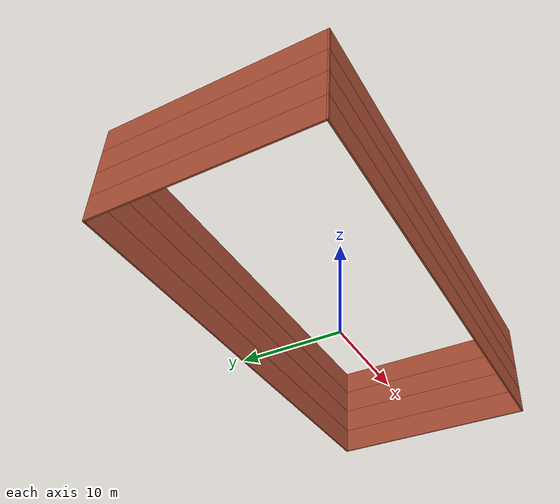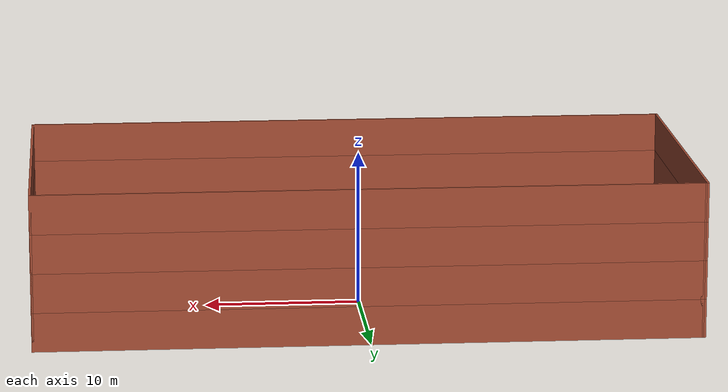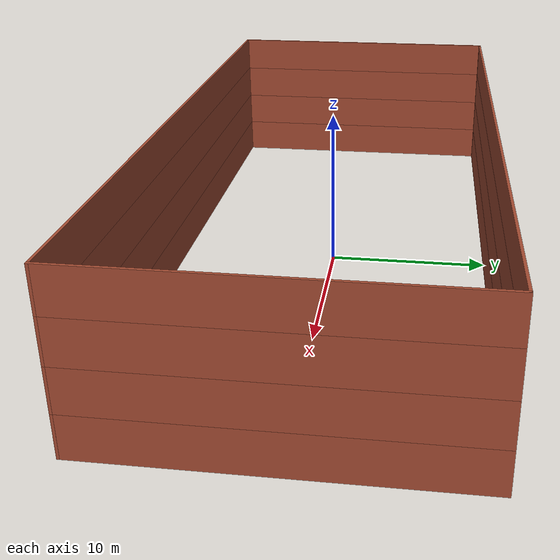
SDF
<?xml version='1.0'?>
<sdf version='1.6'>
  <model name='Warehouse_walls'>
    <link name='Wall_11'>
      <pose frame=''>0.125 10.05 0 0 -0 0</pose>
      <self_collide>0</self_collide>
      <kinematic>0</kinematic>
      <visual name='Wall_11_Visual'>
        <pose frame=''>0 0 1.25 0 -0 0</pose>
        <geometry>
          <box>
            <size>42 0.15 2.5</size>
          </box>
        </geometry>
        <material>
          <script>
            <uri>file://media/materials/scripts/gazebo.material</uri>
            <name>Gazebo/Bricks</name>
          </script>
          <ambient>1 1 1 1</ambient>
          <diffuse>1 1 1 1</diffuse>
          <specular>0.2 0.2 0.2 1</specular>
          <emissive>0 0 0 1</emissive>
        </material>
        <cast_shadows>1</cast_shadows>
        <transparency>0</transparency>
      </visual>
      <collision name='Wall_11_Collision'>
        <laser_retro>0</laser_retro>
        <max_contacts>10</max_contacts>
        <pose frame=''>0 0 1.25 0 -0 0</pose>
        <geometry>
          <box>
            <size>42 0.15 2.5</size>
          </box>
        </geometry>
        <surface>
          <friction>
            <ode>
              <mu>1</mu>
              <mu2>1</mu2>
              <fdir1>0 0 0</fdir1>
              <slip1>0</slip1>
              <slip2>0</slip2>
            </ode>
            <torsional>
              <coefficient>1</coefficient>
              <patch_radius>0</patch_radius>
              <surface_radius>0</surface_radius>
              <use_patch_radius>1</use_patch_radius>
              <ode>
                <slip>0</slip>
              </ode>
            </torsional>
          </friction>
          <bounce>
            <restitution_coefficient>0</restitution_coefficient>
            <threshold>1e+06</threshold>
          </bounce>
          <contact>
            <collide_without_contact>0</collide_without_contact>
            <collide_without_contact_bitmask>1</collide_without_contact_bitmask>
            <collide_bitmask>1</collide_bitmask>
            <ode>
              <soft_cfm>0</soft_cfm>
              <soft_erp>0.2</soft_erp>
              <kp>1e+13</kp>
              <kd>1</kd>
              <max_vel>0.01</max_vel>
              <min_depth>0</min_depth>
            </ode>
            <bullet>
              <split_impulse>1</split_impulse>
              <split_impulse_penetration_threshold>-0.01</split_impulse_penetration_threshold>
              <soft_cfm>0</soft_cfm>
              <soft_erp>0.2</soft_erp>
              <kp>1e+13</kp>
              <kd>1</kd>
            </bullet>
          </contact>
        </surface>
      </collision>
    </link>
    <link name='Wall_12'>
      <pose frame=''>21.05 0 0 0 0 -1.5708</pose>
      <self_collide>0</self_collide>
      <kinematic>0</kinematic>
      <visual name='Wall_12_Visual'>
        <pose frame=''>0 0 1.25 0 -0 0</pose>
        <geometry>
          <box>
            <size>20.25 0.15 2.5</size>
          </box>
        </geometry>
        <material>
          <script>
            <uri>file://media/materials/scripts/gazebo.material</uri>
            <name>Gazebo/Bricks</name>
          </script>
          <ambient>1 1 1 1</ambient>
          <diffuse>1 1 1 1</diffuse>
          <specular>0.2 0.2 0.2 1</specular>
          <emissive>0 0 0 1</emissive>
        </material>
        <cast_shadows>1</cast_shadows>
        <transparency>0</transparency>
      </visual>
      <collision name='Wall_12_Collision'>
        <laser_retro>0</laser_retro>
        <max_contacts>10</max_contacts>
        <pose frame=''>0 0 1.25 0 -0 0</pose>
        <geometry>
          <box>
            <size>20.25 0.15 2.5</size>
          </box>
        </geometry>
        <surface>
          <friction>
            <ode>
              <mu>1</mu>
              <mu2>1</mu2>
              <fdir1>0 0 0</fdir1>
              <slip1>0</slip1>
              <slip2>0</slip2>
            </ode>
            <torsional>
              <coefficient>1</coefficient>
              <patch_radius>0</patch_radius>
              <surface_radius>0</surface_radius>
              <use_patch_radius>1</use_patch_radius>
              <ode>
                <slip>0</slip>
              </ode>
            </torsional>
          </friction>
          <bounce>
            <restitution_coefficient>0</restitution_coefficient>
            <threshold>1e+06</threshold>
          </bounce>
          <contact>
            <collide_without_contact>0</collide_without_contact>
            <collide_without_contact_bitmask>1</collide_without_contact_bitmask>
            <collide_bitmask>1</collide_bitmask>
            <ode>
              <soft_cfm>0</soft_cfm>
              <soft_erp>0.2</soft_erp>
              <kp>1e+13</kp>
              <kd>1</kd>
              <max_vel>0.01</max_vel>
              <min_depth>0</min_depth>
            </ode>
            <bullet>
              <split_impulse>1</split_impulse>
              <split_impulse_penetration_threshold>-0.01</split_impulse_penetration_threshold>
              <soft_cfm>0</soft_cfm>
              <soft_erp>0.2</soft_erp>
              <kp>1e+13</kp>
              <kd>1</kd>
            </bullet>
          </contact>
        </surface>
      </collision>
    </link>
    <link name='Wall_13'>
      <pose frame=''>0 -10.05 0 0 -0 3.14159</pose>
      <self_collide>0</self_collide>
      <kinematic>0</kinematic>
      <visual name='Wall_13_Visual'>
        <pose frame=''>0 0 1.25 0 -0 0</pose>
        <geometry>
          <box>
            <size>42.25 0.15 2.5</size>
          </box>
        </geometry>
        <material>
          <script>
            <uri>file://media/materials/scripts/gazebo.material</uri>
            <name>Gazebo/Bricks</name>
          </script>
          <ambient>1 1 1 1</ambient>
          <diffuse>1 1 1 1</diffuse>
          <specular>0.2 0.2 0.2 1</specular>
          <emissive>0 0 0 1</emissive>
        </material>
        <cast_shadows>1</cast_shadows>
        <transparency>0</transparency>
      </visual>
      <collision name='Wall_13_Collision'>
        <laser_retro>0</laser_retro>
        <max_contacts>10</max_contacts>
        <pose frame=''>0 0 1.25 0 -0 0</pose>
        <geometry>
          <box>
            <size>42.25 0.15 2.5</size>
          </box>
        </geometry>
        <surface>
          <friction>
            <ode>
              <mu>1</mu>
              <mu2>1</mu2>
              <fdir1>0 0 0</fdir1>
              <slip1>0</slip1>
              <slip2>0</slip2>
            </ode>
            <torsional>
              <coefficient>1</coefficient>
              <patch_radius>0</patch_radius>
              <surface_radius>0</surface_radius>
              <use_patch_radius>1</use_patch_radius>
              <ode>
                <slip>0</slip>
              </ode>
            </torsional>
          </friction>
          <bounce>
            <restitution_coefficient>0</restitution_coefficient>
            <threshold>1e+06</threshold>
          </bounce>
          <contact>
            <collide_without_contact>0</collide_without_contact>
            <collide_without_contact_bitmask>1</collide_without_contact_bitmask>
            <collide_bitmask>1</collide_bitmask>
            <ode>
              <soft_cfm>0</soft_cfm>
              <soft_erp>0.2</soft_erp>
              <kp>1e+13</kp>
              <kd>1</kd>
              <max_vel>0.01</max_vel>
              <min_depth>0</min_depth>
            </ode>
            <bullet>
              <split_impulse>1</split_impulse>
              <split_impulse_penetration_threshold>-0.01</split_impulse_penetration_threshold>
              <soft_cfm>0</soft_cfm>
              <soft_erp>0.2</soft_erp>
              <kp>1e+13</kp>
              <kd>1</kd>
            </bullet>
          </contact>
        </surface>
      </collision>
    </link>
    <link name='Wall_14'>
      <pose frame=''>-21.05 0 0 0 -0 1.5708</pose>
      <self_collide>0</self_collide>
      <kinematic>0</kinematic>
      <visual name='Wall_14_Visual'>
        <pose frame=''>0 0 1.25 0 -0 0</pose>
        <geometry>
          <box>
            <size>20.25 0.15 2.5</size>
          </box>
        </geometry>
        <material>
          <script>
            <uri>file://media/materials/scripts/gazebo.material</uri>
            <name>Gazebo/Bricks</name>
          </script>
          <ambient>1 1 1 1</ambient>
          <diffuse>1 1 1 1</diffuse>
          <specular>0.2 0.2 0.2 1</specular>
          <emissive>0 0 0 1</emissive>
        </material>
        <cast_shadows>1</cast_shadows>
        <transparency>0</transparency>
      </visual>
      <collision name='Wall_14_Collision'>
        <laser_retro>0</laser_retro>
        <max_contacts>10</max_contacts>
        <pose frame=''>0 0 1.25 0 -0 0</pose>
        <geometry>
          <box>
            <size>20.25 0.15 2.5</size>
          </box>
        </geometry>
        <surface>
          <friction>
            <ode>
              <mu>1</mu>
              <mu2>1</mu2>
              <fdir1>0 0 0</fdir1>
              <slip1>0</slip1>
              <slip2>0</slip2>
            </ode>
            <torsional>
              <coefficient>1</coefficient>
              <patch_radius>0</patch_radius>
              <surface_radius>0</surface_radius>
              <use_patch_radius>1</use_patch_radius>
              <ode>
                <slip>0</slip>
              </ode>
            </torsional>
          </friction>
          <bounce>
            <restitution_coefficient>0</restitution_coefficient>
            <threshold>1e+06</threshold>
          </bounce>
          <contact>
            <collide_without_contact>0</collide_without_contact>
            <collide_without_contact_bitmask>1</collide_without_contact_bitmask>
            <collide_bitmask>1</collide_bitmask>
            <ode>
              <soft_cfm>0</soft_cfm>
              <soft_erp>0.2</soft_erp>
              <kp>1e+13</kp>
              <kd>1</kd>
              <max_vel>0.01</max_vel>
              <min_depth>0</min_depth>
            </ode>
            <bullet>
              <split_impulse>1</split_impulse>
              <split_impulse_penetration_threshold>-0.01</split_impulse_penetration_threshold>
              <soft_cfm>0</soft_cfm>
              <soft_erp>0.2</soft_erp>
              <kp>1e+13</kp>
              <kd>1</kd>
            </bullet>
          </contact>
        </surface>
      </collision>
    </link>
    <link name='Wall_16'>
      <pose frame=''>-20.925 10.05 0 0 0 -3.14159</pose>
      <self_collide>0</self_collide>
      <kinematic>0</kinematic>
      <visual name='Wall_16_Visual'>
        <pose frame=''>0 0 1.25 0 -0 0</pose>
        <geometry>
          <box>
            <size>0.4 0.15 2.5</size>
          </box>
        </geometry>
        <material>
          <script>
            <uri>file://media/materials/scripts/gazebo.material</uri>
            <name>Gazebo/Bricks</name>
          </script>
          <ambient>1 1 1 1</ambient>
          <diffuse>1 1 1 1</diffuse>
          <specular>0.2 0.2 0.2 1</specular>
          <emissive>0 0 0 1</emissive>
        </material>
        <cast_shadows>1</cast_shadows>
        <transparency>0</transparency>
      </visual>
      <collision name='Wall_16_Collision'>
        <laser_retro>0</laser_retro>
        <max_contacts>10</max_contacts>
        <pose frame=''>0 0 1.25 0 -0 0</pose>
        <geometry>
          <box>
            <size>0.4 0.15 2.5</size>
          </box>
        </geometry>
        <surface>
          <friction>
            <ode>
              <mu>1</mu>
              <mu2>1</mu2>
              <fdir1>0 0 0</fdir1>
              <slip1>0</slip1>
              <slip2>0</slip2>
            </ode>
            <torsional>
              <coefficient>1</coefficient>
              <patch_radius>0</patch_radius>
              <surface_radius>0</surface_radius>
              <use_patch_radius>1</use_patch_radius>
              <ode>
                <slip>0</slip>
              </ode>
            </torsional>
          </friction>
          <bounce>
            <restitution_coefficient>0</restitution_coefficient>
            <threshold>1e+06</threshold>
          </bounce>
          <contact>
            <collide_without_contact>0</collide_without_contact>
            <collide_without_contact_bitmask>1</collide_without_contact_bitmask>
            <collide_bitmask>1</collide_bitmask>
            <ode>
              <soft_cfm>0</soft_cfm>
              <soft_erp>0.2</soft_erp>
              <kp>1e+13</kp>
              <kd>1</kd>
              <max_vel>0.01</max_vel>
              <min_depth>0</min_depth>
            </ode>
            <bullet>
              <split_impulse>1</split_impulse>
              <split_impulse_penetration_threshold>-0.01</split_impulse_penetration_threshold>
              <soft_cfm>0</soft_cfm>
              <soft_erp>0.2</soft_erp>
              <kp>1e+13</kp>
              <kd>1</kd>
            </bullet>
          </contact>
        </surface>
      </collision>
    </link>
    <link name='Wall_18'>
      <pose frame=''>0.125 10.05 2.5 0 -0 0</pose>
      <self_collide>0</self_collide>
      <kinematic>0</kinematic>
      <visual name='Wall_18_Visual'>
        <pose frame=''>0 0 1.25 0 -0 0</pose>
        <geometry>
          <box>
            <size>42 0.15 2.5</size>
          </box>
        </geometry>
        <material>
          <script>
            <uri>file://media/materials/scripts/gazebo.material</uri>
            <name>Gazebo/Bricks</name>
          </script>
          <ambient>1 1 1 1</ambient>
          <diffuse>1 1 1 1</diffuse>
          <specular>0.2 0.2 0.2 1</specular>
          <emissive>0 0 0 1</emissive>
        </material>
        <cast_shadows>1</cast_shadows>
        <transparency>0</transparency>
      </visual>
      <collision name='Wall_18_Collision'>
        <laser_retro>0</laser_retro>
        <max_contacts>10</max_contacts>
        <pose frame=''>0 0 1.25 0 -0 0</pose>
        <geometry>
          <box>
            <size>42 0.15 2.5</size>
          </box>
        </geometry>
        <surface>
          <friction>
            <ode>
              <mu>1</mu>
              <mu2>1</mu2>
              <fdir1>0 0 0</fdir1>
              <slip1>0</slip1>
              <slip2>0</slip2>
            </ode>
            <torsional>
              <coefficient>1</coefficient>
              <patch_radius>0</patch_radius>
              <surface_radius>0</surface_radius>
              <use_patch_radius>1</use_patch_radius>
              <ode>
                <slip>0</slip>
              </ode>
            </torsional>
          </friction>
          <bounce>
            <restitution_coefficient>0</restitution_coefficient>
            <threshold>1e+06</threshold>
          </bounce>
          <contact>
            <collide_without_contact>0</collide_without_contact>
            <collide_without_contact_bitmask>1</collide_without_contact_bitmask>
            <collide_bitmask>1</collide_bitmask>
            <ode>
              <soft_cfm>0</soft_cfm>
              <soft_erp>0.2</soft_erp>
              <kp>1e+13</kp>
              <kd>1</kd>
              <max_vel>0.01</max_vel>
              <min_depth>0</min_depth>
            </ode>
            <bullet>
              <split_impulse>1</split_impulse>
              <split_impulse_penetration_threshold>-0.01</split_impulse_penetration_threshold>
              <soft_cfm>0</soft_cfm>
              <soft_erp>0.2</soft_erp>
              <kp>1e+13</kp>
              <kd>1</kd>
            </bullet>
          </contact>
        </surface>
      </collision>
    </link>
    <link name='Wall_19'>
      <pose frame=''>21.05 0 2.5 0 0 -1.5708</pose>
      <self_collide>0</self_collide>
      <kinematic>0</kinematic>
      <visual name='Wall_19_Visual'>
        <pose frame=''>0 0 1.25 0 -0 0</pose>
        <geometry>
          <box>
            <size>20.25 0.15 2.5</size>
          </box>
        </geometry>
        <material>
          <script>
            <uri>file://media/materials/scripts/gazebo.material</uri>
            <name>Gazebo/Bricks</name>
          </script>
          <ambient>1 1 1 1</ambient>
          <diffuse>1 1 1 1</diffuse>
          <specular>0.2 0.2 0.2 1</specular>
          <emissive>0 0 0 1</emissive>
        </material>
        <cast_shadows>1</cast_shadows>
        <transparency>0</transparency>
      </visual>
      <collision name='Wall_19_Collision'>
        <laser_retro>0</laser_retro>
        <max_contacts>10</max_contacts>
        <pose frame=''>0 0 1.25 0 -0 0</pose>
        <geometry>
          <box>
            <size>20.25 0.15 2.5</size>
          </box>
        </geometry>
        <surface>
          <friction>
            <ode>
              <mu>1</mu>
              <mu2>1</mu2>
              <fdir1>0 0 0</fdir1>
              <slip1>0</slip1>
              <slip2>0</slip2>
            </ode>
            <torsional>
              <coefficient>1</coefficient>
              <patch_radius>0</patch_radius>
              <surface_radius>0</surface_radius>
              <use_patch_radius>1</use_patch_radius>
              <ode>
                <slip>0</slip>
              </ode>
            </torsional>
          </friction>
          <bounce>
            <restitution_coefficient>0</restitution_coefficient>
            <threshold>1e+06</threshold>
          </bounce>
          <contact>
            <collide_without_contact>0</collide_without_contact>
            <collide_without_contact_bitmask>1</collide_without_contact_bitmask>
            <collide_bitmask>1</collide_bitmask>
            <ode>
              <soft_cfm>0</soft_cfm>
              <soft_erp>0.2</soft_erp>
              <kp>1e+13</kp>
              <kd>1</kd>
              <max_vel>0.01</max_vel>
              <min_depth>0</min_depth>
            </ode>
            <bullet>
              <split_impulse>1</split_impulse>
              <split_impulse_penetration_threshold>-0.01</split_impulse_penetration_threshold>
              <soft_cfm>0</soft_cfm>
              <soft_erp>0.2</soft_erp>
              <kp>1e+13</kp>
              <kd>1</kd>
            </bullet>
          </contact>
        </surface>
      </collision>
    </link>
    <link name='Wall_20'>
      <pose frame=''>0 -10.05 2.5 0 -0 3.14159</pose>
      <self_collide>0</self_collide>
      <kinematic>0</kinematic>
      <visual name='Wall_20_Visual'>
        <pose frame=''>0 0 1.25 0 -0 0</pose>
        <geometry>
          <box>
            <size>42.25 0.15 2.5</size>
          </box>
        </geometry>
        <material>
          <script>
            <uri>file://media/materials/scripts/gazebo.material</uri>
            <name>Gazebo/Bricks</name>
          </script>
          <ambient>1 1 1 1</ambient>
          <diffuse>1 1 1 1</diffuse>
          <specular>0.2 0.2 0.2 1</specular>
          <emissive>0 0 0 1</emissive>
        </material>
        <cast_shadows>1</cast_shadows>
        <transparency>0</transparency>
      </visual>
      <collision name='Wall_20_Collision'>
        <laser_retro>0</laser_retro>
        <max_contacts>10</max_contacts>
        <pose frame=''>0 0 1.25 0 -0 0</pose>
        <geometry>
          <box>
            <size>42.25 0.15 2.5</size>
          </box>
        </geometry>
        <surface>
          <friction>
            <ode>
              <mu>1</mu>
              <mu2>1</mu2>
              <fdir1>0 0 0</fdir1>
              <slip1>0</slip1>
              <slip2>0</slip2>
            </ode>
            <torsional>
              <coefficient>1</coefficient>
              <patch_radius>0</patch_radius>
              <surface_radius>0</surface_radius>
              <use_patch_radius>1</use_patch_radius>
              <ode>
                <slip>0</slip>
              </ode>
            </torsional>
          </friction>
          <bounce>
            <restitution_coefficient>0</restitution_coefficient>
            <threshold>1e+06</threshold>
          </bounce>
          <contact>
            <collide_without_contact>0</collide_without_contact>
            <collide_without_contact_bitmask>1</collide_without_contact_bitmask>
            <collide_bitmask>1</collide_bitmask>
            <ode>
              <soft_cfm>0</soft_cfm>
              <soft_erp>0.2</soft_erp>
              <kp>1e+13</kp>
              <kd>1</kd>
              <max_vel>0.01</max_vel>
              <min_depth>0</min_depth>
            </ode>
            <bullet>
              <split_impulse>1</split_impulse>
              <split_impulse_penetration_threshold>-0.01</split_impulse_penetration_threshold>
              <soft_cfm>0</soft_cfm>
              <soft_erp>0.2</soft_erp>
              <kp>1e+13</kp>
              <kd>1</kd>
            </bullet>
          </contact>
        </surface>
      </collision>
    </link>
    <link name='Wall_21'>
      <pose frame=''>-21.05 0 2.5 0 -0 1.5708</pose>
      <self_collide>0</self_collide>
      <kinematic>0</kinematic>
      <visual name='Wall_21_Visual'>
        <pose frame=''>0 0 1.25 0 -0 0</pose>
        <geometry>
          <box>
            <size>20.25 0.15 2.5</size>
          </box>
        </geometry>
        <material>
          <script>
            <uri>file://media/materials/scripts/gazebo.material</uri>
            <name>Gazebo/Bricks</name>
          </script>
          <ambient>1 1 1 1</ambient>
          <diffuse>1 1 1 1</diffuse>
          <specular>0.2 0.2 0.2 1</specular>
          <emissive>0 0 0 1</emissive>
        </material>
        <cast_shadows>1</cast_shadows>
        <transparency>0</transparency>
      </visual>
      <collision name='Wall_21_Collision'>
        <laser_retro>0</laser_retro>
        <max_contacts>10</max_contacts>
        <pose frame=''>0 0 1.25 0 -0 0</pose>
        <geometry>
          <box>
            <size>20.25 0.15 2.5</size>
          </box>
        </geometry>
        <surface>
          <friction>
            <ode>
              <mu>1</mu>
              <mu2>1</mu2>
              <fdir1>0 0 0</fdir1>
              <slip1>0</slip1>
              <slip2>0</slip2>
            </ode>
            <torsional>
              <coefficient>1</coefficient>
              <patch_radius>0</patch_radius>
              <surface_radius>0</surface_radius>
              <use_patch_radius>1</use_patch_radius>
              <ode>
                <slip>0</slip>
              </ode>
            </torsional>
          </friction>
          <bounce>
            <restitution_coefficient>0</restitution_coefficient>
            <threshold>1e+06</threshold>
          </bounce>
          <contact>
            <collide_without_contact>0</collide_without_contact>
            <collide_without_contact_bitmask>1</collide_without_contact_bitmask>
            <collide_bitmask>1</collide_bitmask>
            <ode>
              <soft_cfm>0</soft_cfm>
              <soft_erp>0.2</soft_erp>
              <kp>1e+13</kp>
              <kd>1</kd>
              <max_vel>0.01</max_vel>
              <min_depth>0</min_depth>
            </ode>
            <bullet>
              <split_impulse>1</split_impulse>
              <split_impulse_penetration_threshold>-0.01</split_impulse_penetration_threshold>
              <soft_cfm>0</soft_cfm>
              <soft_erp>0.2</soft_erp>
              <kp>1e+13</kp>
              <kd>1</kd>
            </bullet>
          </contact>
        </surface>
      </collision>
    </link>
    <link name='Wall_22'>
      <pose frame=''>-20.925 10.05 2.5 0 0 -3.14159</pose>
      <self_collide>0</self_collide>
      <kinematic>0</kinematic>
      <visual name='Wall_22_Visual'>
        <pose frame=''>0 0 1.25 0 -0 0</pose>
        <geometry>
          <box>
            <size>0.4 0.15 2.5</size>
          </box>
        </geometry>
        <material>
          <script>
            <uri>file://media/materials/scripts/gazebo.material</uri>
            <name>Gazebo/Bricks</name>
          </script>
          <ambient>1 1 1 1</ambient>
          <diffuse>1 1 1 1</diffuse>
          <specular>0.2 0.2 0.2 1</specular>
          <emissive>0 0 0 1</emissive>
        </material>
        <cast_shadows>1</cast_shadows>
        <transparency>0</transparency>
      </visual>
      <collision name='Wall_22_Collision'>
        <laser_retro>0</laser_retro>
        <max_contacts>10</max_contacts>
        <pose frame=''>0 0 1.25 0 -0 0</pose>
        <geometry>
          <box>
            <size>0.4 0.15 2.5</size>
          </box>
        </geometry>
        <surface>
          <friction>
            <ode>
              <mu>1</mu>
              <mu2>1</mu2>
              <fdir1>0 0 0</fdir1>
              <slip1>0</slip1>
              <slip2>0</slip2>
            </ode>
            <torsional>
              <coefficient>1</coefficient>
              <patch_radius>0</patch_radius>
              <surface_radius>0</surface_radius>
              <use_patch_radius>1</use_patch_radius>
              <ode>
                <slip>0</slip>
              </ode>
            </torsional>
          </friction>
          <bounce>
            <restitution_coefficient>0</restitution_coefficient>
            <threshold>1e+06</threshold>
          </bounce>
          <contact>
            <collide_without_contact>0</collide_without_contact>
            <collide_without_contact_bitmask>1</collide_without_contact_bitmask>
            <collide_bitmask>1</collide_bitmask>
            <ode>
              <soft_cfm>0</soft_cfm>
              <soft_erp>0.2</soft_erp>
              <kp>1e+13</kp>
              <kd>1</kd>
              <max_vel>0.01</max_vel>
              <min_depth>0</min_depth>
            </ode>
            <bullet>
              <split_impulse>1</split_impulse>
              <split_impulse_penetration_threshold>-0.01</split_impulse_penetration_threshold>
              <soft_cfm>0</soft_cfm>
              <soft_erp>0.2</soft_erp>
              <kp>1e+13</kp>
              <kd>1</kd>
            </bullet>
          </contact>
        </surface>
      </collision>
    </link>
    <link name='Wall_23'>
      <pose frame=''>0.125 10.05 5 0 -0 0</pose>
      <self_collide>0</self_collide>
      <kinematic>0</kinematic>
      <visual name='Wall_23_Visual'>
        <pose frame=''>0 0 1.25 0 -0 0</pose>
        <geometry>
          <box>
            <size>42 0.15 2.5</size>
          </box>
        </geometry>
        <material>
          <script>
            <uri>file://media/materials/scripts/gazebo.material</uri>
            <name>Gazebo/Bricks</name>
          </script>
          <ambient>1 1 1 1</ambient>
          <diffuse>1 1 1 1</diffuse>
          <specular>0.2 0.2 0.2 1</specular>
          <emissive>0 0 0 1</emissive>
        </material>
        <cast_shadows>1</cast_shadows>
        <transparency>0</transparency>
      </visual>
      <collision name='Wall_23_Collision'>
        <laser_retro>0</laser_retro>
        <max_contacts>10</max_contacts>
        <pose frame=''>0 0 1.25 0 -0 0</pose>
        <geometry>
          <box>
            <size>42 0.15 2.5</size>
          </box>
        </geometry>
        <surface>
          <friction>
            <ode>
              <mu>1</mu>
              <mu2>1</mu2>
              <fdir1>0 0 0</fdir1>
              <slip1>0</slip1>
              <slip2>0</slip2>
            </ode>
            <torsional>
              <coefficient>1</coefficient>
              <patch_radius>0</patch_radius>
              <surface_radius>0</surface_radius>
              <use_patch_radius>1</use_patch_radius>
              <ode>
                <slip>0</slip>
              </ode>
            </torsional>
          </friction>
          <bounce>
            <restitution_coefficient>0</restitution_coefficient>
            <threshold>1e+06</threshold>
          </bounce>
          <contact>
            <collide_without_contact>0</collide_without_contact>
            <collide_without_contact_bitmask>1</collide_without_contact_bitmask>
            <collide_bitmask>1</collide_bitmask>
            <ode>
              <soft_cfm>0</soft_cfm>
              <soft_erp>0.2</soft_erp>
              <kp>1e+13</kp>
              <kd>1</kd>
              <max_vel>0.01</max_vel>
              <min_depth>0</min_depth>
            </ode>
            <bullet>
              <split_impulse>1</split_impulse>
              <split_impulse_penetration_threshold>-0.01</split_impulse_penetration_threshold>
              <soft_cfm>0</soft_cfm>
              <soft_erp>0.2</soft_erp>
              <kp>1e+13</kp>
              <kd>1</kd>
            </bullet>
          </contact>
        </surface>
      </collision>
    </link>
    <link name='Wall_24'>
      <pose frame=''>21.05 0 5 0 0 -1.5708</pose>
      <self_collide>0</self_collide>
      <kinematic>0</kinematic>
      <visual name='Wall_24_Visual'>
        <pose frame=''>0 0 1.25 0 -0 0</pose>
        <geometry>
          <box>
            <size>20.25 0.15 2.5</size>
          </box>
        </geometry>
        <material>
          <script>
            <uri>file://media/materials/scripts/gazebo.material</uri>
            <name>Gazebo/Bricks</name>
          </script>
          <ambient>1 1 1 1</ambient>
          <diffuse>1 1 1 1</diffuse>
          <specular>0.2 0.2 0.2 1</specular>
          <emissive>0 0 0 1</emissive>
        </material>
        <cast_shadows>1</cast_shadows>
        <transparency>0</transparency>
      </visual>
      <collision name='Wall_24_Collision'>
        <laser_retro>0</laser_retro>
        <max_contacts>10</max_contacts>
        <pose frame=''>0 0 1.25 0 -0 0</pose>
        <geometry>
          <box>
            <size>20.25 0.15 2.5</size>
          </box>
        </geometry>
        <surface>
          <friction>
            <ode>
              <mu>1</mu>
              <mu2>1</mu2>
              <fdir1>0 0 0</fdir1>
              <slip1>0</slip1>
              <slip2>0</slip2>
            </ode>
            <torsional>
              <coefficient>1</coefficient>
              <patch_radius>0</patch_radius>
              <surface_radius>0</surface_radius>
              <use_patch_radius>1</use_patch_radius>
              <ode>
                <slip>0</slip>
              </ode>
            </torsional>
          </friction>
          <bounce>
            <restitution_coefficient>0</restitution_coefficient>
            <threshold>1e+06</threshold>
          </bounce>
          <contact>
            <collide_without_contact>0</collide_without_contact>
            <collide_without_contact_bitmask>1</collide_without_contact_bitmask>
            <collide_bitmask>1</collide_bitmask>
            <ode>
              <soft_cfm>0</soft_cfm>
              <soft_erp>0.2</soft_erp>
              <kp>1e+13</kp>
              <kd>1</kd>
              <max_vel>0.01</max_vel>
              <min_depth>0</min_depth>
            </ode>
            <bullet>
              <split_impulse>1</split_impulse>
              <split_impulse_penetration_threshold>-0.01</split_impulse_penetration_threshold>
              <soft_cfm>0</soft_cfm>
              <soft_erp>0.2</soft_erp>
              <kp>1e+13</kp>
              <kd>1</kd>
            </bullet>
          </contact>
        </surface>
      </collision>
    </link>
    <link name='Wall_25'>
      <pose frame=''>0 -10.05 5 0 -0 3.14159</pose>
      <self_collide>0</self_collide>
      <kinematic>0</kinematic>
      <visual name='Wall_25_Visual'>
        <pose frame=''>0 0 1.25 0 -0 0</pose>
        <geometry>
          <box>
            <size>42.25 0.15 2.5</size>
          </box>
        </geometry>
        <material>
          <script>
            <uri>file://media/materials/scripts/gazebo.material</uri>
            <name>Gazebo/Bricks</name>
          </script>
          <ambient>1 1 1 1</ambient>
          <diffuse>1 1 1 1</diffuse>
          <specular>0.2 0.2 0.2 1</specular>
          <emissive>0 0 0 1</emissive>
        </material>
        <cast_shadows>1</cast_shadows>
        <transparency>0</transparency>
      </visual>
      <collision name='Wall_25_Collision'>
        <laser_retro>0</laser_retro>
        <max_contacts>10</max_contacts>
        <pose frame=''>0 0 1.25 0 -0 0</pose>
        <geometry>
          <box>
            <size>42.25 0.15 2.5</size>
          </box>
        </geometry>
        <surface>
          <friction>
            <ode>
              <mu>1</mu>
              <mu2>1</mu2>
              <fdir1>0 0 0</fdir1>
              <slip1>0</slip1>
              <slip2>0</slip2>
            </ode>
            <torsional>
              <coefficient>1</coefficient>
              <patch_radius>0</patch_radius>
              <surface_radius>0</surface_radius>
              <use_patch_radius>1</use_patch_radius>
              <ode>
                <slip>0</slip>
              </ode>
            </torsional>
          </friction>
          <bounce>
            <restitution_coefficient>0</restitution_coefficient>
            <threshold>1e+06</threshold>
          </bounce>
          <contact>
            <collide_without_contact>0</collide_without_contact>
            <collide_without_contact_bitmask>1</collide_without_contact_bitmask>
            <collide_bitmask>1</collide_bitmask>
            <ode>
              <soft_cfm>0</soft_cfm>
              <soft_erp>0.2</soft_erp>
              <kp>1e+13</kp>
              <kd>1</kd>
              <max_vel>0.01</max_vel>
              <min_depth>0</min_depth>
            </ode>
            <bullet>
              <split_impulse>1</split_impulse>
              <split_impulse_penetration_threshold>-0.01</split_impulse_penetration_threshold>
              <soft_cfm>0</soft_cfm>
              <soft_erp>0.2</soft_erp>
              <kp>1e+13</kp>
              <kd>1</kd>
            </bullet>
          </contact>
        </surface>
      </collision>
    </link>
    <link name='Wall_26'>
      <pose frame=''>-21.05 0 5 0 -0 1.5708</pose>
      <self_collide>0</self_collide>
      <kinematic>0</kinematic>
      <visual name='Wall_26_Visual'>
        <pose frame=''>0 0 1.25 0 -0 0</pose>
        <geometry>
          <box>
            <size>20.25 0.15 2.5</size>
          </box>
        </geometry>
        <material>
          <script>
            <uri>file://media/materials/scripts/gazebo.material</uri>
            <name>Gazebo/Bricks</name>
          </script>
          <ambient>1 1 1 1</ambient>
          <diffuse>1 1 1 1</diffuse>
          <specular>0.2 0.2 0.2 1</specular>
          <emissive>0 0 0 1</emissive>
        </material>
        <cast_shadows>1</cast_shadows>
        <transparency>0</transparency>
      </visual>
      <collision name='Wall_26_Collision'>
        <laser_retro>0</laser_retro>
        <max_contacts>10</max_contacts>
        <pose frame=''>0 0 1.25 0 -0 0</pose>
        <geometry>
          <box>
            <size>20.25 0.15 2.5</size>
          </box>
        </geometry>
        <surface>
          <friction>
            <ode>
              <mu>1</mu>
              <mu2>1</mu2>
              <fdir1>0 0 0</fdir1>
              <slip1>0</slip1>
              <slip2>0</slip2>
            </ode>
            <torsional>
              <coefficient>1</coefficient>
              <patch_radius>0</patch_radius>
              <surface_radius>0</surface_radius>
              <use_patch_radius>1</use_patch_radius>
              <ode>
                <slip>0</slip>
              </ode>
            </torsional>
          </friction>
          <bounce>
            <restitution_coefficient>0</restitution_coefficient>
            <threshold>1e+06</threshold>
          </bounce>
          <contact>
            <collide_without_contact>0</collide_without_contact>
            <collide_without_contact_bitmask>1</collide_without_contact_bitmask>
            <collide_bitmask>1</collide_bitmask>
            <ode>
              <soft_cfm>0</soft_cfm>
              <soft_erp>0.2</soft_erp>
              <kp>1e+13</kp>
              <kd>1</kd>
              <max_vel>0.01</max_vel>
              <min_depth>0</min_depth>
            </ode>
            <bullet>
              <split_impulse>1</split_impulse>
              <split_impulse_penetration_threshold>-0.01</split_impulse_penetration_threshold>
              <soft_cfm>0</soft_cfm>
              <soft_erp>0.2</soft_erp>
              <kp>1e+13</kp>
              <kd>1</kd>
            </bullet>
          </contact>
        </surface>
      </collision>
    </link>
    <link name='Wall_27'>
      <pose frame=''>-20.925 10.05 5 0 0 -3.14159</pose>
      <self_collide>0</self_collide>
      <kinematic>0</kinematic>
      <visual name='Wall_27_Visual'>
        <pose frame=''>0 0 1.25 0 -0 0</pose>
        <geometry>
          <box>
            <size>0.4 0.15 2.5</size>
          </box>
        </geometry>
        <material>
          <script>
            <uri>file://media/materials/scripts/gazebo.material</uri>
            <name>Gazebo/Bricks</name>
          </script>
          <ambient>1 1 1 1</ambient>
          <diffuse>1 1 1 1</diffuse>
          <specular>0.2 0.2 0.2 1</specular>
          <emissive>0 0 0 1</emissive>
        </material>
        <cast_shadows>1</cast_shadows>
        <transparency>0</transparency>
      </visual>
      <collision name='Wall_27_Collision'>
        <laser_retro>0</laser_retro>
        <max_contacts>10</max_contacts>
        <pose frame=''>0 0 1.25 0 -0 0</pose>
        <geometry>
          <box>
            <size>0.4 0.15 2.5</size>
          </box>
        </geometry>
        <surface>
          <friction>
            <ode>
              <mu>1</mu>
              <mu2>1</mu2>
              <fdir1>0 0 0</fdir1>
              <slip1>0</slip1>
              <slip2>0</slip2>
            </ode>
            <torsional>
              <coefficient>1</coefficient>
              <patch_radius>0</patch_radius>
              <surface_radius>0</surface_radius>
              <use_patch_radius>1</use_patch_radius>
              <ode>
                <slip>0</slip>
              </ode>
            </torsional>
          </friction>
          <bounce>
            <restitution_coefficient>0</restitution_coefficient>
            <threshold>1e+06</threshold>
          </bounce>
          <contact>
            <collide_without_contact>0</collide_without_contact>
            <collide_without_contact_bitmask>1</collide_without_contact_bitmask>
            <collide_bitmask>1</collide_bitmask>
            <ode>
              <soft_cfm>0</soft_cfm>
              <soft_erp>0.2</soft_erp>
              <kp>1e+13</kp>
              <kd>1</kd>
              <max_vel>0.01</max_vel>
              <min_depth>0</min_depth>
            </ode>
            <bullet>
              <split_impulse>1</split_impulse>
              <split_impulse_penetration_threshold>-0.01</split_impulse_penetration_threshold>
              <soft_cfm>0</soft_cfm>
              <soft_erp>0.2</soft_erp>
              <kp>1e+13</kp>
              <kd>1</kd>
            </bullet>
          </contact>
        </surface>
      </collision>
    </link>
    <link name='Wall_28'>
      <pose frame=''>0.125 10.05 7.5 0 -0 0</pose>
      <self_collide>0</self_collide>
      <kinematic>0</kinematic>
      <visual name='Wall_28_Visual'>
        <pose frame=''>0 0 1.25 0 -0 0</pose>
        <geometry>
          <box>
            <size>42 0.15 2.5</size>
          </box>
        </geometry>
        <material>
          <script>
            <uri>file://media/materials/scripts/gazebo.material</uri>
            <name>Gazebo/Bricks</name>
          </script>
          <ambient>1 1 1 1</ambient>
          <diffuse>1 1 1 1</diffuse>
          <specular>0.2 0.2 0.2 1</specular>
          <emissive>0 0 0 1</emissive>
        </material>
        <cast_shadows>1</cast_shadows>
        <transparency>0</transparency>
      </visual>
      <collision name='Wall_28_Collision'>
        <laser_retro>0</laser_retro>
        <max_contacts>10</max_contacts>
        <pose frame=''>0 0 1.25 0 -0 0</pose>
        <geometry>
          <box>
            <size>42 0.15 2.5</size>
          </box>
        </geometry>
        <surface>
          <friction>
            <ode>
              <mu>1</mu>
              <mu2>1</mu2>
              <fdir1>0 0 0</fdir1>
              <slip1>0</slip1>
              <slip2>0</slip2>
            </ode>
            <torsional>
              <coefficient>1</coefficient>
              <patch_radius>0</patch_radius>
              <surface_radius>0</surface_radius>
              <use_patch_radius>1</use_patch_radius>
              <ode>
                <slip>0</slip>
              </ode>
            </torsional>
          </friction>
          <bounce>
            <restitution_coefficient>0</restitution_coefficient>
            <threshold>1e+06</threshold>
          </bounce>
          <contact>
            <collide_without_contact>0</collide_without_contact>
            <collide_without_contact_bitmask>1</collide_without_contact_bitmask>
            <collide_bitmask>1</collide_bitmask>
            <ode>
              <soft_cfm>0</soft_cfm>
              <soft_erp>0.2</soft_erp>
              <kp>1e+13</kp>
              <kd>1</kd>
              <max_vel>0.01</max_vel>
              <min_depth>0</min_depth>
            </ode>
            <bullet>
              <split_impulse>1</split_impulse>
              <split_impulse_penetration_threshold>-0.01</split_impulse_penetration_threshold>
              <soft_cfm>0</soft_cfm>
              <soft_erp>0.2</soft_erp>
              <kp>1e+13</kp>
              <kd>1</kd>
            </bullet>
          </contact>
        </surface>
      </collision>
    </link>
    <link name='Wall_29'>
      <pose frame=''>21.05 0 7.5 0 0 -1.5708</pose>
      <self_collide>0</self_collide>
      <kinematic>0</kinematic>
      <visual name='Wall_29_Visual'>
        <pose frame=''>0 0 1.25 0 -0 0</pose>
        <geometry>
          <box>
            <size>20.25 0.15 2.5</size>
          </box>
        </geometry>
        <material>
          <script>
            <uri>file://media/materials/scripts/gazebo.material</uri>
            <name>Gazebo/Bricks</name>
          </script>
          <ambient>1 1 1 1</ambient>
          <diffuse>1 1 1 1</diffuse>
          <specular>0.2 0.2 0.2 1</specular>
          <emissive>0 0 0 1</emissive>
        </material>
        <cast_shadows>1</cast_shadows>
        <transparency>0</transparency>
      </visual>
      <collision name='Wall_29_Collision'>
        <laser_retro>0</laser_retro>
        <max_contacts>10</max_contacts>
        <pose frame=''>0 0 1.25 0 -0 0</pose>
        <geometry>
          <box>
            <size>20.25 0.15 2.5</size>
          </box>
        </geometry>
        <surface>
          <friction>
            <ode>
              <mu>1</mu>
              <mu2>1</mu2>
              <fdir1>0 0 0</fdir1>
              <slip1>0</slip1>
              <slip2>0</slip2>
            </ode>
            <torsional>
              <coefficient>1</coefficient>
              <patch_radius>0</patch_radius>
              <surface_radius>0</surface_radius>
              <use_patch_radius>1</use_patch_radius>
              <ode>
                <slip>0</slip>
              </ode>
            </torsional>
          </friction>
          <bounce>
            <restitution_coefficient>0</restitution_coefficient>
            <threshold>1e+06</threshold>
          </bounce>
          <contact>
            <collide_without_contact>0</collide_without_contact>
            <collide_without_contact_bitmask>1</collide_without_contact_bitmask>
            <collide_bitmask>1</collide_bitmask>
            <ode>
              <soft_cfm>0</soft_cfm>
              <soft_erp>0.2</soft_erp>
              <kp>1e+13</kp>
              <kd>1</kd>
              <max_vel>0.01</max_vel>
              <min_depth>0</min_depth>
            </ode>
            <bullet>
              <split_impulse>1</split_impulse>
              <split_impulse_penetration_threshold>-0.01</split_impulse_penetration_threshold>
              <soft_cfm>0</soft_cfm>
              <soft_erp>0.2</soft_erp>
              <kp>1e+13</kp>
              <kd>1</kd>
            </bullet>
          </contact>
        </surface>
      </collision>
    </link>
    <link name='Wall_30'>
      <pose frame=''>0 -10.05 7.5 0 -0 3.14159</pose>
      <self_collide>0</self_collide>
      <kinematic>0</kinematic>
      <visual name='Wall_30_Visual'>
        <pose frame=''>0 0 1.25 0 -0 0</pose>
        <geometry>
          <box>
            <size>42.25 0.15 2.5</size>
          </box>
        </geometry>
        <material>
          <script>
            <uri>file://media/materials/scripts/gazebo.material</uri>
            <name>Gazebo/Bricks</name>
          </script>
          <ambient>1 1 1 1</ambient>
          <diffuse>1 1 1 1</diffuse>
          <specular>0.2 0.2 0.2 1</specular>
          <emissive>0 0 0 1</emissive>
        </material>
        <cast_shadows>1</cast_shadows>
        <transparency>0</transparency>
      </visual>
      <collision name='Wall_30_Collision'>
        <laser_retro>0</laser_retro>
        <max_contacts>10</max_contacts>
        <pose frame=''>0 0 1.25 0 -0 0</pose>
        <geometry>
          <box>
            <size>42.25 0.15 2.5</size>
          </box>
        </geometry>
        <surface>
          <friction>
            <ode>
              <mu>1</mu>
              <mu2>1</mu2>
              <fdir1>0 0 0</fdir1>
              <slip1>0</slip1>
              <slip2>0</slip2>
            </ode>
            <torsional>
              <coefficient>1</coefficient>
              <patch_radius>0</patch_radius>
              <surface_radius>0</surface_radius>
              <use_patch_radius>1</use_patch_radius>
              <ode>
                <slip>0</slip>
              </ode>
            </torsional>
          </friction>
          <bounce>
            <restitution_coefficient>0</restitution_coefficient>
            <threshold>1e+06</threshold>
          </bounce>
          <contact>
            <collide_without_contact>0</collide_without_contact>
            <collide_without_contact_bitmask>1</collide_without_contact_bitmask>
            <collide_bitmask>1</collide_bitmask>
            <ode>
              <soft_cfm>0</soft_cfm>
              <soft_erp>0.2</soft_erp>
              <kp>1e+13</kp>
              <kd>1</kd>
              <max_vel>0.01</max_vel>
              <min_depth>0</min_depth>
            </ode>
            <bullet>
              <split_impulse>1</split_impulse>
              <split_impulse_penetration_threshold>-0.01</split_impulse_penetration_threshold>
              <soft_cfm>0</soft_cfm>
              <soft_erp>0.2</soft_erp>
              <kp>1e+13</kp>
              <kd>1</kd>
            </bullet>
          </contact>
        </surface>
      </collision>
    </link>
    <link name='Wall_31'>
      <pose frame=''>-21.05 0 7.5 0 -0 1.5708</pose>
      <self_collide>0</self_collide>
      <kinematic>0</kinematic>
      <visual name='Wall_31_Visual'>
        <pose frame=''>0 0 1.25 0 -0 0</pose>
        <geometry>
          <box>
            <size>20.25 0.15 2.5</size>
          </box>
        </geometry>
        <material>
          <script>
            <uri>file://media/materials/scripts/gazebo.material</uri>
            <name>Gazebo/Bricks</name>
          </script>
          <ambient>1 1 1 1</ambient>
          <diffuse>1 1 1 1</diffuse>
          <specular>0.2 0.2 0.2 1</specular>
          <emissive>0 0 0 1</emissive>
        </material>
        <cast_shadows>1</cast_shadows>
        <transparency>0</transparency>
      </visual>
      <collision name='Wall_31_Collision'>
        <laser_retro>0</laser_retro>
        <max_contacts>10</max_contacts>
        <pose frame=''>0 0 1.25 0 -0 0</pose>
        <geometry>
          <box>
            <size>20.25 0.15 2.5</size>
          </box>
        </geometry>
        <surface>
          <friction>
            <ode>
              <mu>1</mu>
              <mu2>1</mu2>
              <fdir1>0 0 0</fdir1>
              <slip1>0</slip1>
              <slip2>0</slip2>
            </ode>
            <torsional>
              <coefficient>1</coefficient>
              <patch_radius>0</patch_radius>
              <surface_radius>0</surface_radius>
              <use_patch_radius>1</use_patch_radius>
              <ode>
                <slip>0</slip>
              </ode>
            </torsional>
          </friction>
          <bounce>
            <restitution_coefficient>0</restitution_coefficient>
            <threshold>1e+06</threshold>
          </bounce>
          <contact>
            <collide_without_contact>0</collide_without_contact>
            <collide_without_contact_bitmask>1</collide_without_contact_bitmask>
            <collide_bitmask>1</collide_bitmask>
            <ode>
              <soft_cfm>0</soft_cfm>
              <soft_erp>0.2</soft_erp>
              <kp>1e+13</kp>
              <kd>1</kd>
              <max_vel>0.01</max_vel>
              <min_depth>0</min_depth>
            </ode>
            <bullet>
              <split_impulse>1</split_impulse>
              <split_impulse_penetration_threshold>-0.01</split_impulse_penetration_threshold>
              <soft_cfm>0</soft_cfm>
              <soft_erp>0.2</soft_erp>
              <kp>1e+13</kp>
              <kd>1</kd>
            </bullet>
          </contact>
        </surface>
      </collision>
    </link>
    <link name='Wall_32'>
      <pose frame=''>-20.925 10.05 7.5 0 0 -3.14159</pose>
      <self_collide>0</self_collide>
      <kinematic>0</kinematic>
      <visual name='Wall_32_Visual'>
        <pose frame=''>0 0 1.25 0 -0 0</pose>
        <geometry>
          <box>
            <size>0.4 0.15 2.5</size>
          </box>
        </geometry>
        <material>
          <script>
            <uri>file://media/materials/scripts/gazebo.material</uri>
            <name>Gazebo/Bricks</name>
          </script>
          <ambient>1 1 1 1</ambient>
          <diffuse>1 1 1 1</diffuse>
          <specular>0.2 0.2 0.2 1</specular>
          <emissive>0 0 0 1</emissive>
        </material>
        <cast_shadows>1</cast_shadows>
        <transparency>0</transparency>
      </visual>
      <collision name='Wall_32_Collision'>
        <laser_retro>0</laser_retro>
        <max_contacts>10</max_contacts>
        <pose frame=''>0 0 1.25 0 -0 0</pose>
        <geometry>
          <box>
            <size>0.4 0.15 2.5</size>
          </box>
        </geometry>
        <surface>
          <friction>
            <ode>
              <mu>1</mu>
              <mu2>1</mu2>
              <fdir1>0 0 0</fdir1>
              <slip1>0</slip1>
              <slip2>0</slip2>
            </ode>
            <torsional>
              <coefficient>1</coefficient>
              <patch_radius>0</patch_radius>
              <surface_radius>0</surface_radius>
              <use_patch_radius>1</use_patch_radius>
              <ode>
                <slip>0</slip>
              </ode>
            </torsional>
          </friction>
          <bounce>
            <restitution_coefficient>0</restitution_coefficient>
            <threshold>1e+06</threshold>
          </bounce>
          <contact>
            <collide_without_contact>0</collide_without_contact>
            <collide_without_contact_bitmask>1</collide_without_contact_bitmask>
            <collide_bitmask>1</collide_bitmask>
            <ode>
              <soft_cfm>0</soft_cfm>
              <soft_erp>0.2</soft_erp>
              <kp>1e+13</kp>
              <kd>1</kd>
              <max_vel>0.01</max_vel>
              <min_depth>0</min_depth>
            </ode>
            <bullet>
              <split_impulse>1</split_impulse>
              <split_impulse_penetration_threshold>-0.01</split_impulse_penetration_threshold>
              <soft_cfm>0</soft_cfm>
              <soft_erp>0.2</soft_erp>
              <kp>1e+13</kp>
              <kd>1</kd>
            </bullet>
          </contact>
        </surface>
      </collision>
    </link>
    <static>1</static>
    <allow_auto_disable>1</allow_auto_disable>
  </model>
</sdf>
